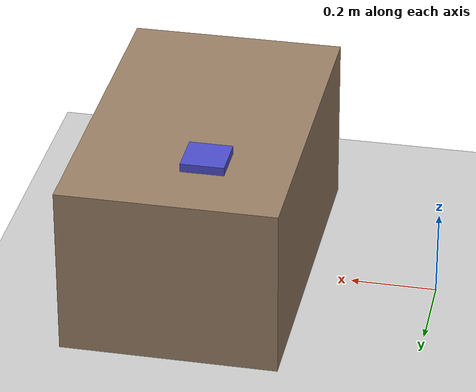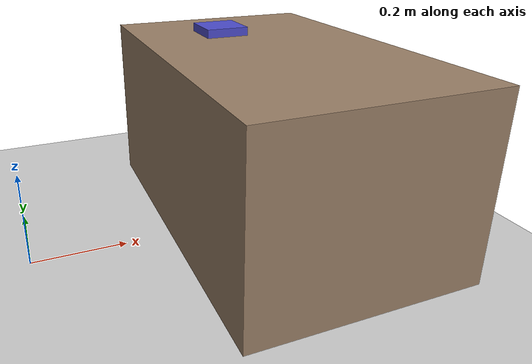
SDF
<?xml version="1.0" ?>
<sdf version="1.6">
  <world name="ur5e_experiment">
    <plugin name="gazebo_ros_state" filename="libgazebo_ros_state.so">
      <ros><namespace>/gazebo</namespace></ros>
      <update_rate>100</update_rate>
    </plugin>

    <include><uri>model://sun</uri></include>
    <include><uri>model://ground_plane</uri></include>
    <physics type="ode">
      <max_step_size>0.002</max_step_size>
      <real_time_update_rate>500</real_time_update_rate>
    <ode><solver><type>quick</type><iters>150</iters></solver></ode></physics>

    <model name="table">
      <static>true</static>
      <pose>0.55 0 0.2 0 0 0</pose>
      <link name="link">
        <collision name="c"><geometry><box><size>0.5 0.8 0.4</size></box></geometry></collision>
        <visual name="v"><geometry><box><size>0.5 0.8 0.4</size></box></geometry>
          <material><ambient>0.6 0.5 0.4 1</ambient></material></visual>
      </link>
    </model>

    <model name="pad">
      <static>true</static>
      <pose>0.5 0.2 0.41 0 0 0</pose>
      <link name="link">
        <collision name="pad_collision"><geometry><box><size>0.1 0.1 0.02</size></box></geometry><surface><friction><ode><mu>0.5</mu><mu2>0.5</mu2></ode></friction><contact><ode><kp>1e6</kp><kd>1</kd><min_depth>0</min_depth></ode></contact></surface></collision>
        <visual name="pad_v"><geometry><box><size>0.1 0.1 0.02</size></box></geometry>
          <material><ambient>0.3 0.3 0.8 1</ambient></material></visual>
      </link>
    </model>
  </world>
</sdf>
